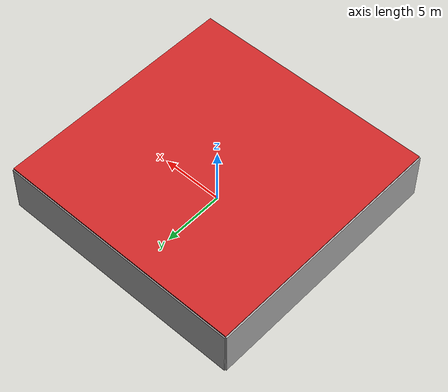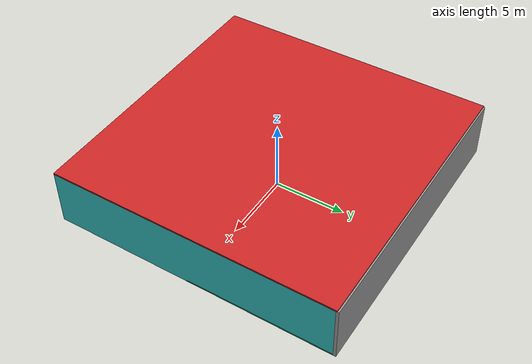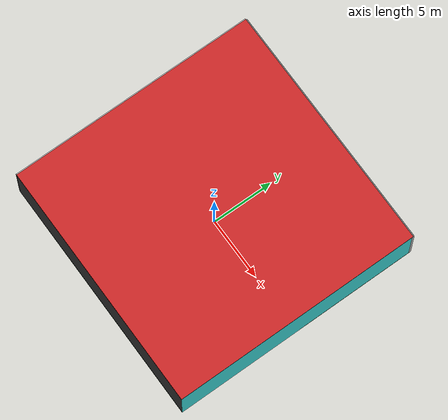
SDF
<sdf version="1.4">
 <world name="default">
  <physics type="ode">
   <max_step_size>0.001</max_step_size>
   <real_time_factor>1</real_time_factor>
   <real_time_update_rate>1000</real_time_update_rate>
   <gravity>0 0 -9.8</gravity>
  </physics>
  <scene><ambient>0.4 0.4 0.4 1</ambient><background>0.7 0.7 0.7 1</background><shadows>1</shadows></scene>
  <model name="Surrounding">
   <static>1</static>
   <link name="Ceiling">
    <collision name="Ceiling_Collision"><geometry><box><size>20 20 0.1</size></box></geometry></collision>
    <visual name="Ceiling_Visual">
     <geometry><box><size>20 20 0.1</size></box></geometry>
     <material>
      <script><uri>file://media/materials/scripts/gazebo.material</uri><name>Gazebo/Red</name></script>
     </material>
    </visual>
    <pose>0 0 4.05 0 0 0</pose>
   </link>
   <link name="Wall_South">
    <collision name="Wall_South_Collision">
     <geometry><box><size>20 0 4</size></box></geometry>
     <pose>0 0 2 0 -0 0</pose>
    </collision>
    <visual name="Wall_South_Visual">
     <pose>0 0 2 0 -0 0</pose>
     <geometry><box><size>20 0 4</size></box></geometry>
     <material>
      <script><uri>file://media/materials/scripts/gazebo.material</uri><name>Gazebo/DarkGrey</name></script>
     </material>
    </visual>
    <velocity_decay><linear>0</linear><angular>0</angular></velocity_decay>
    <pose>0 -10 0 0 -0 0</pose>
   </link>
   <link name="Wall_East">
    <collision name="Wall_21_Collision">
     <geometry><box><size>20 0 4</size></box></geometry>
     <pose>0 0 2 0 -0 0</pose>
    </collision>
    <visual name="Wall_21_Visual">
     <pose>0 0 2 0 -0 0</pose>
     <geometry><box><size>20 0 4</size></box></geometry>
     <material>
      <script><uri>file://media/materials/scripts/gazebo.material</uri><name>Gazebo/Turquoise</name></script>
     </material>
    </visual>
    <velocity_decay><linear>0</linear><angular>0</angular></velocity_decay>
    <pose>10 0 0 0 -0 1.5708</pose>
   </link>
   <link name="Wall_North">
    <collision name="Wall_22_Collision">
     <geometry><box><size>20 0.2 4</size></box></geometry>
     <pose>0 0 2 0 -0 0</pose>
    </collision>
    <visual name="Wall_22_Visual">
     <pose>0 0 2 0 -0 0</pose>
     <geometry><box><size>20 0.2 4</size></box></geometry>
     <material>
      <script><uri>file://media/materials/scripts/gazebo.material</uri><name>Gazebo/Grey</name></script>
     </material>
    </visual>
    <velocity_decay><linear>0</linear><angular>0</angular></velocity_decay>
    <pose>0 10 0 0 -0 0</pose>
   </link>
   <link name="Wall_West">
    <collision name="Wall_23_Collision">
     <geometry><box><size>20 0.2 4</size></box></geometry>
     <pose>0 0 2 0 -0 0</pose>
    </collision>
    <visual name="Wall_23_Visual">
     <pose>0 0 2 0 -0 0</pose>
     <geometry><box><size>20 0.2 4</size></box></geometry>
     <material>
      <script><uri>file://media/materials/scripts/gazebo.material</uri><name>Gazebo/LightOn</name></script>
     </material>
    </visual>
    <velocity_decay><linear>0</linear><angular>0</angular></velocity_decay>
    <pose>-10 0 0 0 0 -1.5708</pose>
   </link>
   <link name="Ground_link">
    <collision name="collision">
     <pose>0 0 .05 0 -0 0</pose>
     <geometry><box><size>20 20 0.1</size></box></geometry>
    </collision>
    <visual name="visual">
     <pose>0 0 .05 0 -0 0</pose>
     <geometry><box><size>20 20 0.1</size></box></geometry>
     <material>
      <script><uri>file://media/materials/scripts/gazebo.material</uri><name>Gazebo/GreenTransparent</name></script>
     </material>
    </visual>
   </link>
   <static>1</static>
  </model>
  <spherical_coordinates>
   <surface_model>EARTH_WGS84</surface_model>
   <latitude_deg>0</latitude_deg>
   <longitude_deg>0</longitude_deg>
   <elevation>0</elevation>
   <heading_deg>0</heading_deg>
  </spherical_coordinates>
  <light name="lightball_0" type="diffuse">
   <diffuse>0.8 0.8 0.8 1</diffuse>
   <specular>0.2 0.2 0.2 1</specular>
   <attenuation>
    <range>100</range>
    <constant>0.7</constant>
    <linear>0.01</linear>
    <quadratic>0.001</quadratic>
   </attenuation>
   <direction>-0.5 0.1 -0.9</direction>
   <pose>-5.95075072768 3.34054704421 2.32545962573 0 0 0</pose>
  </light>
  <light name="lightball_1" type="diffuse">
   <diffuse>0.8 0.8 0.8 1</diffuse>
   <specular>0.2 0.2 0.2 1</specular>
   <attenuation>
    <range>100</range>
    <constant>0.7</constant>
    <linear>0.01</linear>
    <quadratic>0.001</quadratic>
   </attenuation>
   <direction>-0.5 0.1 -0.9</direction>
   <pose>9.77145902506 6.51387687583 3.13405590721 0 0 0</pose>
  </light>
  <light name="lightball_2" type="diffuse">
   <diffuse>0.8 0.8 0.8 1</diffuse>
   <specular>0.2 0.2 0.2 1</specular>
   <attenuation>
    <range>100</range>
    <constant>0.7</constant>
    <linear>0.01</linear>
    <quadratic>0.001</quadratic>
   </attenuation>
   <direction>-0.5 0.1 -0.9</direction>
   <pose>-8.48544043731 -7.89335970871 0.627477310835 0 0 0</pose>
  </light>
  <include>
   <uri>model://construction_cone</uri>
   <pose>-5.5027961749 -8.61982311419 0 0 0 2.39949936567</pose>
  </include>
  <include><uri>model://table</uri><pose>-4.71149535153 3.72973413995 0 0 0 2.18093204722</pose></include>
  <include><uri>model://cabinet</uri><pose>-2.44420070844 -4.16296052515 0 0 0 0.669134646186</pose></include>
  <include><uri>model://table</uri><pose>-2.19548481347 5.49768355114 0 0 0 1.58317252501</pose></include>
  <include><uri>model://cabinet</uri><pose>4.87198605753 -5.12676383713 0 0 0 2.84483219229</pose></include>
 </world>
</sdf>

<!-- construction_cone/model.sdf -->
<sdf version="1.5">
  <model name="Construction Cone">
    <link name="link">
      <collision name="collision">
        <geometry>
          <mesh>
            <scale>10 10 10</scale>
            <uri>file://isr-testbed/construction_cone/meshes/construction_cone.dae</uri>
          </mesh>
        </geometry>
      </collision>
      <visual name="visual">
        <geometry>
          <mesh>
            <scale>10 10 10</scale>
            <uri>file://isr-testbed/construction_cone/meshes/construction_cone.dae</uri>
          </mesh>
        </geometry>
      </visual>
    </link>
  </model>
</sdf>

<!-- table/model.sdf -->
<sdf version="1.5">
  <model name="table">
    <static>true</static>
    <link name="link">
      <collision name="surface">
        <pose>0 0 1.0 0 0 0</pose>
        <geometry>
          <box>
            <size>1.5 0.8 0.03</size>
          </box>
        </geometry>
        <surface>
          <friction>
            <ode>
              <mu>0.6</mu>
              <mu2>0.6</mu2>
            </ode>
          </friction>
        </surface>
      </collision>
      <visual name="visual1">
        <pose>0 0 1.0 0 0 0</pose>
        <geometry>
          <box>
            <size>1.5 0.8 0.03</size>
          </box>
        </geometry>
        <material>
          <script>
            <uri>model://media/materials/scripts/gazebo.material</uri>
            <name>Gazebo/Wood</name>
          </script>
        </material>
      </visual>
      <collision name="front_left_leg">
        <pose>0.68 0.38 0.5 0 0 0</pose>
        <geometry>
          <cylinder>
            <radius>0.02</radius>
            <length>1.0</length>
          </cylinder>
        </geometry>
      </collision>
      <visual name="front_left_leg">
        <pose>0.68 0.38 0.5 0 0 0</pose>
        <geometry>
          <cylinder>
            <radius>0.02</radius>
            <length>1.0</length>
          </cylinder>
        </geometry>
        <material>
          <script>
            <uri>model://media/materials/scripts/gazebo.material</uri>
            <name>Gazebo/Grey</name>
          </script>
        </material>
      </visual>
      <collision name="front_right_leg">
        <pose>0.68 -0.38 0.5 0 0 0</pose>
        <geometry>
          <cylinder>
            <radius>0.02</radius>
            <length>1.0</length>
          </cylinder>
        </geometry>
      </collision>
      <visual name="front_right_leg">
        <pose>0.68 -0.38 0.5 0 0 0</pose>
        <geometry>
          <cylinder>
            <radius>0.02</radius>
            <length>1.0</length>
          </cylinder>
        </geometry>
        <material>
          <script>
            <uri>model://media/materials/scripts/gazebo.material</uri>
            <name>Gazebo/Grey</name>
          </script>
        </material>
      </visual>
      <collision name="back_right_leg">
        <pose>-0.68 -0.38 0.5 0 0 0</pose>
        <geometry>
          <cylinder>
            <radius>0.02</radius>
            <length>1.0</length>
          </cylinder>
        </geometry>
      </collision>
      <visual name="back_right_leg">
        <pose>-0.68 -0.38 0.5 0 0 0</pose>
        <geometry>
          <cylinder>
            <radius>0.02</radius>
            <length>1.0</length>
          </cylinder>
        </geometry>
        <material>
          <script>
            <uri>model://media/materials/scripts/gazebo.material</uri>
            <name>Gazebo/Grey</name>
          </script>
        </material>
      </visual>
      <collision name="back_left_leg">
        <pose>-0.68 0.38 0.5 0 0 0</pose>
        <geometry>
          <cylinder>
            <radius>0.02</radius>
            <length>1.0</length>
          </cylinder>
        </geometry>
      </collision>
      <visual name="back_left_leg">
        <pose>-0.68 0.38 0.5 0 0 0</pose>
        <geometry>
          <cylinder>
            <radius>0.02</radius>
            <length>1.0</length>
          </cylinder>
        </geometry>
        <material>
          <script>
            <uri>model://media/materials/scripts/gazebo.material</uri>
            <name>Gazebo/Grey</name>
          </script>
        </material>
      </visual>
    </link>
  </model>
</sdf>

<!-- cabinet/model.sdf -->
<sdf version="1.5">
  <model name="cabinet">
    <static>true</static>
    <link name="cabinet_bottom_plate">
      <inertial>
        <pose>0 0 -1 0 0 0</pose>
        <inertia>
          <ixx>2.050000</ixx>
          <ixy>0</ixy>
          <ixz>0</ixz>
          <iyy>2.050000</iyy>
          <iyz>0</iyz>
          <izz>2.050000</izz>
        </inertia>
        <mass>25.000000</mass>
      </inertial>
      <collision name="cabinet_bottom_plate_geom">
        <pose>0 0 0.010000 0 0 0</pose>
        <geometry>
          <box>
            <size>0.450000 0.450000 0.020000</size>
          </box>
        </geometry>
      </collision>
      <visual name="cabinet_bottom_plate_geom_visual">
        <pose>0 0 0.010000 0 0 0</pose>
        <geometry>
          <box>
            <size>0.450000 0.450000 0.020000</size>
          </box>
        </geometry>
        <material>
          <script>
            <uri>model://media/materials/scripts/gazebo.material</uri>
            <name>Gazebo/Wood</name>
          </script>
        </material>
      </visual>
      <collision name="cabinet_bottom_plate_geom_cabinet_back_plate">
        <pose>0.235000 0 0.510000 0 0 0</pose>
        <geometry>
          <box>
            <size>0.020000 0.450000 1.020000</size>
          </box>
        </geometry>
      </collision>
      <visual name="cabinet_bottom_plate_geom_cabinet_back_plate_visual">
        <pose>0.235000 0 0.510000 0 0 0</pose>
        <geometry>
          <box>
            <size>0.020000 0.450000 1.020000</size>
          </box>
        </geometry>
        <material>
          <script>
            <uri>model://media/materials/scripts/gazebo.material</uri>
            <name>Gazebo/Wood</name>
          </script>
        </material>
      </visual>
      <collision name="cabinet_bottom_plate_geom_cabinet_left_plate">
        <pose>0 0.235000 0.510000 0 0 0</pose>
        <geometry>
          <box>
            <size>0.450000 0.020000 1.020000</size>
          </box>
        </geometry>
      </collision>
      <visual name="cabinet_bottom_plate_geom_cabinet_left_plate_visual">
        <pose>0 0.235000 0.510000 0 0 0</pose>
        <geometry>
          <box>
            <size>0.450000 0.020000 1.020000</size>
          </box>
        </geometry>
        <material>
          <script>
            <uri>model://media/materials/scripts/gazebo.material</uri>
            <name>Gazebo/Wood</name>
          </script>
        </material>
      </visual>
      <collision name="cabinet_bottom_plate_geom_cabinet_middle_plate">
        <pose>0 0 0.510000 0 0 0</pose>
        <geometry>
          <box>
            <size>0.450000 0.450000 0.020000</size>
          </box>
        </geometry>
      </collision>
      <visual name="cabinet_bottom_plate_geom_cabinet_middle_plate_visual">
        <pose>0 0 0.510000 0 0 0</pose>
        <geometry>
          <box>
            <size>0.450000 0.450000 0.020000</size>
          </box>
        </geometry>
        <material>
          <script>
            <uri>model://media/materials/scripts/gazebo.material</uri>
            <name>Gazebo/Wood</name>
          </script>
        </material>
      </visual>
      <collision name="cabinet_bottom_plate_geom_cabinet_right_plate">
        <pose>0 -0.235000 0.510000 0 0 0</pose>
        <geometry>
          <box>
            <size>0.450000 0.020000 1.020000</size>
          </box>
        </geometry>
      </collision>
      <visual name="cabinet_bottom_plate_geom_cabinet_right_plate_visual">
        <pose>0 -0.235000 0.510000 0 0 0</pose>
        <geometry>
          <box>
            <size>0.450000 0.020000 1.020000</size>
          </box>
        </geometry>
        <material>
          <script>
            <uri>model://media/materials/scripts/gazebo.material</uri>
            <name>Gazebo/Wood</name>
          </script>
        </material>
      </visual>
      <collision name="cabinet_bottom_plate_geom_cabinet_top_plate">
        <pose>0 0 1.010000 0 0 0</pose>
        <geometry>
          <box>
            <size>0.450000 0.450000 0.020000</size>
          </box>
        </geometry>
      </collision>
      <visual name="cabinet_bottom_plate_geom_cabinet_top_plate_visual">
        <pose>0 0 1.010000 0 0 0</pose>
        <geometry>
          <box>
            <size>0.450000 0.450000 0.020000</size>
          </box>
        </geometry>
        <material>
          <script>
            <uri>model://media/materials/scripts/gazebo.material</uri>
            <name>Gazebo/Wood</name>
          </script>
        </material>
      </visual>
    </link>
  </model>
</sdf>
